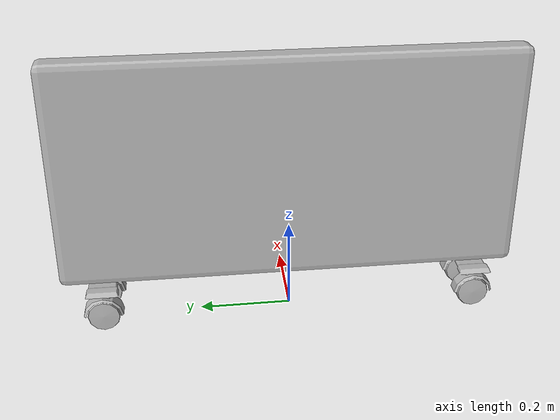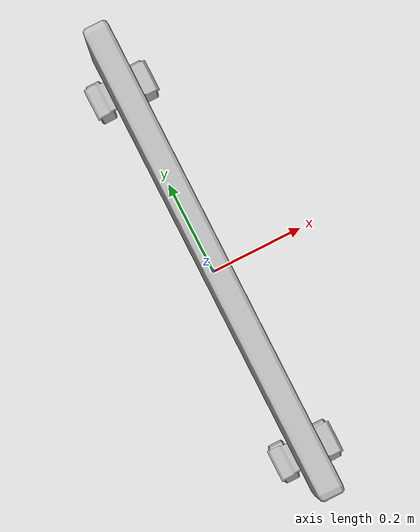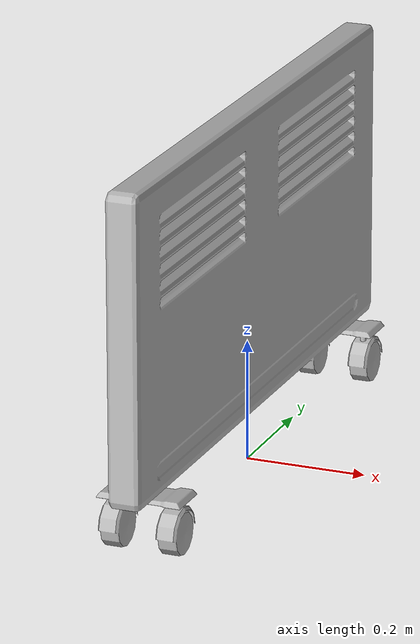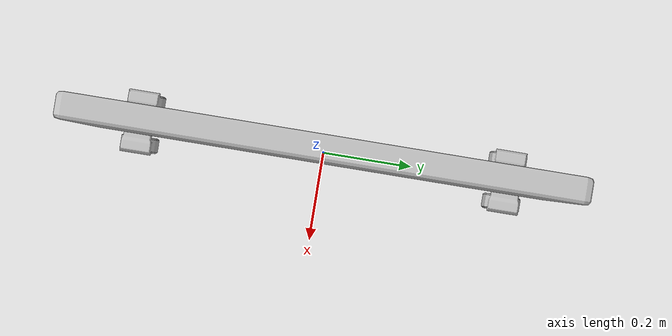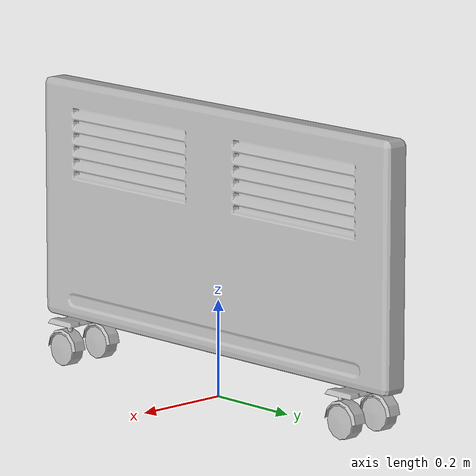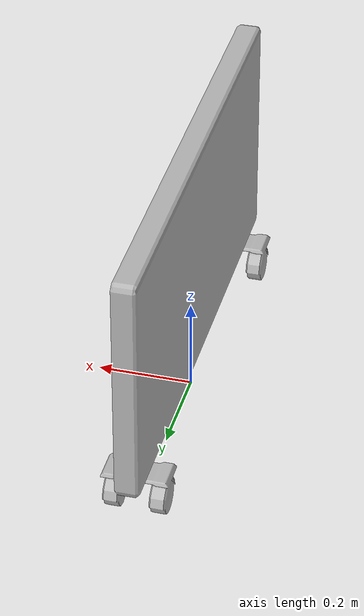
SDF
<?xml version='1.0'?>
<sdf version='1.4'>
  <model name='230'>
    <pose>0 0 0 0 0 0</pose>
    <static>true</static>
    <link name='link'>
      <collision name='collision'>
        <pose>0 0 0 0 0 0</pose>
        <geometry>
          <box>
            <size>0.138051 1.00002 2</size>
          </box>
        </geometry>
      </collision>
      <visual name='visual'>
        <pose>0 0 0 0 0 0</pose>
        <geometry>
          <mesh><uri>model://230/230.dae</uri></mesh>
        </geometry>
      </visual>
    </link>
  </model>
</sdf>
